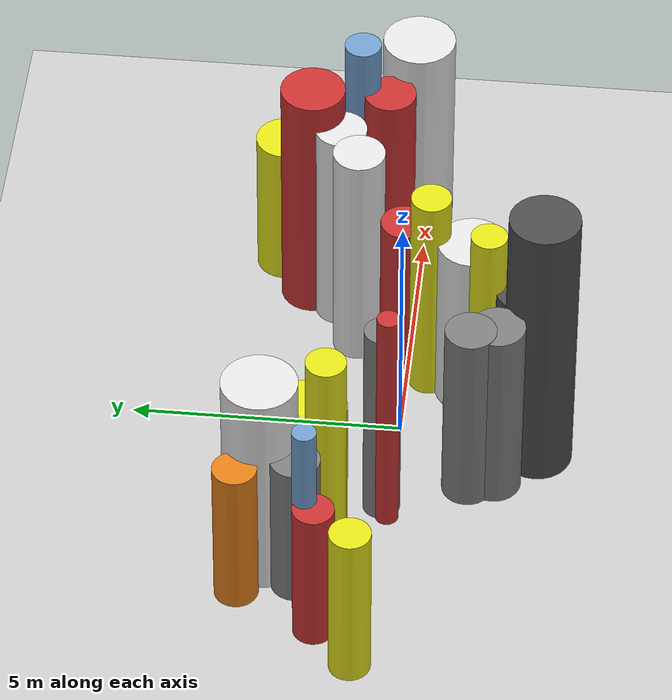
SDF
<?xml version='1.0'?>
<sdf version='1.6'>
  <world name='routeA_rl_v1__dense_recovery__rl_train__s_turn_multi_obstacle__000041'>
    <!-- Sun light -->
    <light name='sun' type='directional'>
      <cast_shadows>1</cast_shadows>
      <pose>0 0 10 0 0 0</pose>
      <diffuse>0.8 0.8 0.8 1</diffuse>
      <specular>0.2 0.2 0.2 1</specular>
      <attenuation>
        <range>1000</range>
        <constant>0.9</constant>
        <linear>0.01</linear>
        <quadratic>0.001</quadratic>
      </attenuation>
      <direction>-0.5 0.1 -0.9</direction>
    </light>

    <!-- Ground plane -->
    <model name='ground_plane'>
      <static>1</static>
      <link name='link'>
        <collision name='collision'>
          <geometry>
            <plane>
              <normal>0 0 1</normal>
              <size>100 100</size>
            </plane>
          </geometry>
          <surface>
            <contact>
              <collide_bitmask>65535</collide_bitmask>
              <ode/>
            </contact>
            <friction>
              <ode>
                <mu>100</mu>
                <mu2>50</mu2>
              </ode>
              <torsional><ode/></torsional>
            </friction>
            <bounce/>
          </surface>
          <max_contacts>10</max_contacts>
        </collision>
        <visual name='visual'>
          <cast_shadows>0</cast_shadows>
          <geometry>
            <plane>
              <normal>0 0 1</normal>
              <size>100 100</size>
            </plane>
          </geometry>
          <material>
            <script>
              <uri>file://media/materials/scripts/gazebo.material</uri>
              <n>Gazebo/Grey</n>
            </script>
          </material>
        </visual>
      </link>
    </model>

    <!-- Environment -->
    <magnetic_field>6e-06 2.3e-05 -4.2e-05</magnetic_field>
    <atmosphere type='adiabatic'/>
    <physics name='default_physics' default='0' type='ode'>
      <gravity>0 0 -9.8</gravity>
      <max_step_size>0.004</max_step_size>
      <real_time_factor>1</real_time_factor>
      <real_time_update_rate>250</real_time_update_rate>
    </physics>
    <scene>
      <ambient>0.4 0.4 0.4 1</ambient>
      <background>0.7 0.7 0.7 1</background>
      <shadows>1</shadows>
    </scene>
    <wind/>
    <spherical_coordinates>
      <surface_model>EARTH_WGS84</surface_model>
      <latitude_deg>0</latitude_deg>
      <longitude_deg>0</longitude_deg>
      <elevation>0</elevation>
      <heading_deg>0</heading_deg>
    </spherical_coordinates>

    <!-- ============ OBSTACLES (28) ============ -->
    <model name='s_turn_obs_0'>
      <static>1</static>
      <link name='link'>
        <visual name='visual'>
          <geometry>
            <cylinder>
              <radius>0.3797</radius>
              <length>3.3732</length>
            </cylinder>
          </geometry>
          <material>
            <script>
              <n>Gazebo/Yellow</n>
              <uri>file://media/materials/scripts/gazebo.material</uri>
            </script>
            <ambient>0.9 0.9 0.1 1</ambient>
          </material>
        </visual>
        <collision name='collision'>
          <geometry>
            <cylinder>
              <radius>0.3797</radius>
              <length>3.3732</length>
            </cylinder>
          </geometry>
          <max_contacts>10</max_contacts>
          <surface>
            <contact><ode/></contact>
            <bounce/>
            <friction>
              <ode><mu>1</mu><mu2>1</mu2></ode>
              <torsional><ode/></torsional>
            </friction>
          </surface>
        </collision>
      </link>
      <pose>-6.0000 0.3633 1.6866 0 0 0.0000</pose>
    </model>

    <model name='s_turn_obs_1'>
      <static>1</static>
      <link name='link'>
        <visual name='visual'>
          <geometry>
            <cylinder>
              <radius>0.3783</radius>
              <length>3.0800</length>
            </cylinder>
          </geometry>
          <material>
            <script>
              <n>Gazebo/Red</n>
              <uri>file://media/materials/scripts/gazebo.material</uri>
            </script>
            <ambient>0.8 0.2 0.2 1</ambient>
          </material>
        </visual>
        <collision name='collision'>
          <geometry>
            <cylinder>
              <radius>0.3783</radius>
              <length>3.0800</length>
            </cylinder>
          </geometry>
          <max_contacts>10</max_contacts>
          <surface>
            <contact><ode/></contact>
            <bounce/>
            <friction>
              <ode><mu>1</mu><mu2>1</mu2></ode>
              <torsional><ode/></torsional>
            </friction>
          </surface>
        </collision>
      </link>
      <pose>-5.2000 1.0885 1.5400 0 0 0.0000</pose>
    </model>

    <model name='s_turn_obs_2'>
      <static>1</static>
      <link name='link'>
        <visual name='visual'>
          <geometry>
            <cylinder>
              <radius>0.4049</radius>
              <length>3.1342</length>
            </cylinder>
          </geometry>
          <material>
            <script>
              <n>Gazebo/Orange</n>
              <uri>file://media/materials/scripts/gazebo.material</uri>
            </script>
            <ambient>0.9 0.5 0.1 1</ambient>
          </material>
        </visual>
        <collision name='collision'>
          <geometry>
            <cylinder>
              <radius>0.4049</radius>
              <length>3.1342</length>
            </cylinder>
          </geometry>
          <max_contacts>10</max_contacts>
          <surface>
            <contact><ode/></contact>
            <bounce/>
            <friction>
              <ode><mu>1</mu><mu2>1</mu2></ode>
              <torsional><ode/></torsional>
            </friction>
          </surface>
        </collision>
      </link>
      <pose>-4.4000 2.5679 1.5671 0 0 0.0000</pose>
    </model>

    <model name='s_turn_obs_3'>
      <static>1</static>
      <link name='link'>
        <visual name='visual'>
          <geometry>
            <cylinder>
              <radius>0.6931</radius>
              <length>4.5150</length>
            </cylinder>
          </geometry>
          <material>
            <script>
              <n>Gazebo/White</n>
              <uri>file://media/materials/scripts/gazebo.material</uri>
            </script>
            <ambient>0.9 0.9 0.9 1</ambient>
          </material>
        </visual>
        <collision name='collision'>
          <geometry>
            <cylinder>
              <radius>0.6931</radius>
              <length>4.5150</length>
            </cylinder>
          </geometry>
          <max_contacts>10</max_contacts>
          <surface>
            <contact><ode/></contact>
            <bounce/>
            <friction>
              <ode><mu>1</mu><mu2>1</mu2></ode>
              <torsional><ode/></torsional>
            </friction>
          </surface>
        </collision>
      </link>
      <pose>-3.6000 2.2031 2.2575 0 0 0.0000</pose>
    </model>

    <model name='s_turn_obs_4'>
      <static>1</static>
      <link name='link'>
        <visual name='visual'>
          <geometry>
            <cylinder>
              <radius>0.6945</radius>
              <length>3.2013</length>
            </cylinder>
          </geometry>
          <material>
            <script>
              <n>Gazebo/Yellow</n>
              <uri>file://media/materials/scripts/gazebo.material</uri>
            </script>
            <ambient>0.9 0.9 0.1 1</ambient>
          </material>
        </visual>
        <collision name='collision'>
          <geometry>
            <cylinder>
              <radius>0.6945</radius>
              <length>3.2013</length>
            </cylinder>
          </geometry>
          <max_contacts>10</max_contacts>
          <surface>
            <contact><ode/></contact>
            <bounce/>
            <friction>
              <ode><mu>1</mu><mu2>1</mu2></ode>
              <torsional><ode/></torsional>
            </friction>
          </surface>
        </collision>
      </link>
      <pose>-2.8000 1.4058 1.6007 0 0 0.0000</pose>
    </model>

    <model name='s_turn_obs_5'>
      <static>1</static>
      <link name='link'>
        <visual name='visual'>
          <geometry>
            <cylinder>
              <radius>0.3413</radius>
              <length>4.4339</length>
            </cylinder>
          </geometry>
          <material>
            <script>
              <n>Gazebo/Grey</n>
              <uri>file://media/materials/scripts/gazebo.material</uri>
            </script>
            <ambient>0.5 0.5 0.5 1</ambient>
          </material>
        </visual>
        <collision name='collision'>
          <geometry>
            <cylinder>
              <radius>0.3413</radius>
              <length>4.4339</length>
            </cylinder>
          </geometry>
          <max_contacts>10</max_contacts>
          <surface>
            <contact><ode/></contact>
            <bounce/>
            <friction>
              <ode><mu>1</mu><mu2>1</mu2></ode>
              <torsional><ode/></torsional>
            </friction>
          </surface>
        </collision>
      </link>
      <pose>-2.0000 0.1681 2.2169 0 0 0.0000</pose>
    </model>

    <model name='s_turn_obs_6'>
      <static>1</static>
      <link name='link'>
        <visual name='visual'>
          <geometry>
            <cylinder>
              <radius>0.5026</radius>
              <length>3.9575</length>
            </cylinder>
          </geometry>
          <material>
            <script>
              <n>Gazebo/Grey</n>
              <uri>file://media/materials/scripts/gazebo.material</uri>
            </script>
            <ambient>0.5 0.5 0.5 1</ambient>
          </material>
        </visual>
        <collision name='collision'>
          <geometry>
            <cylinder>
              <radius>0.5026</radius>
              <length>3.9575</length>
            </cylinder>
          </geometry>
          <max_contacts>10</max_contacts>
          <surface>
            <contact><ode/></contact>
            <bounce/>
            <friction>
              <ode><mu>1</mu><mu2>1</mu2></ode>
              <torsional><ode/></torsional>
            </friction>
          </surface>
        </collision>
      </link>
      <pose>-1.2000 -1.8287 1.9787 0 0 0.0000</pose>
    </model>

    <model name='s_turn_obs_7'>
      <static>1</static>
      <link name='link'>
        <visual name='visual'>
          <geometry>
            <cylinder>
              <radius>0.6502</radius>
              <length>5.8920</length>
            </cylinder>
          </geometry>
          <material>
            <script>
              <n>Gazebo/DarkGrey</n>
              <uri>file://media/materials/scripts/gazebo.material</uri>
            </script>
            <ambient>0.3 0.3 0.3 1</ambient>
          </material>
        </visual>
        <collision name='collision'>
          <geometry>
            <cylinder>
              <radius>0.6502</radius>
              <length>5.8920</length>
            </cylinder>
          </geometry>
          <max_contacts>10</max_contacts>
          <surface>
            <contact><ode/></contact>
            <bounce/>
            <friction>
              <ode><mu>1</mu><mu2>1</mu2></ode>
              <torsional><ode/></torsional>
            </friction>
          </surface>
        </collision>
      </link>
      <pose>-0.4000 -2.5664 2.9460 0 0 0.0000</pose>
    </model>

    <model name='s_turn_obs_8'>
      <static>1</static>
      <link name='link'>
        <visual name='visual'>
          <geometry>
            <cylinder>
              <radius>0.6548</radius>
              <length>3.4392</length>
            </cylinder>
          </geometry>
          <material>
            <script>
              <n>Gazebo/DarkGrey</n>
              <uri>file://media/materials/scripts/gazebo.material</uri>
            </script>
            <ambient>0.3 0.3 0.3 1</ambient>
          </material>
        </visual>
        <collision name='collision'>
          <geometry>
            <cylinder>
              <radius>0.6548</radius>
              <length>3.4392</length>
            </cylinder>
          </geometry>
          <max_contacts>10</max_contacts>
          <surface>
            <contact><ode/></contact>
            <bounce/>
            <friction>
              <ode><mu>1</mu><mu2>1</mu2></ode>
              <torsional><ode/></torsional>
            </friction>
          </surface>
        </collision>
      </link>
      <pose>0.4000 -2.3088 1.7196 0 0 0.0000</pose>
    </model>

    <model name='s_turn_obs_9'>
      <static>1</static>
      <link name='link'>
        <visual name='visual'>
          <geometry>
            <cylinder>
              <radius>0.6447</radius>
              <length>3.7421</length>
            </cylinder>
          </geometry>
          <material>
            <script>
              <n>Gazebo/White</n>
              <uri>file://media/materials/scripts/gazebo.material</uri>
            </script>
            <ambient>0.9 0.9 0.9 1</ambient>
          </material>
        </visual>
        <collision name='collision'>
          <geometry>
            <cylinder>
              <radius>0.6447</radius>
              <length>3.7421</length>
            </cylinder>
          </geometry>
          <max_contacts>10</max_contacts>
          <surface>
            <contact><ode/></contact>
            <bounce/>
            <friction>
              <ode><mu>1</mu><mu2>1</mu2></ode>
              <torsional><ode/></torsional>
            </friction>
          </surface>
        </collision>
      </link>
      <pose>1.2000 -1.1778 1.8711 0 0 0.0000</pose>
    </model>

    <model name='s_turn_obs_10'>
      <static>1</static>
      <link name='link'>
        <visual name='visual'>
          <geometry>
            <cylinder>
              <radius>0.4406</radius>
              <length>3.3836</length>
            </cylinder>
          </geometry>
          <material>
            <script>
              <n>Gazebo/Red</n>
              <uri>file://media/materials/scripts/gazebo.material</uri>
            </script>
            <ambient>0.8 0.2 0.2 1</ambient>
          </material>
        </visual>
        <collision name='collision'>
          <geometry>
            <cylinder>
              <radius>0.4406</radius>
              <length>3.3836</length>
            </cylinder>
          </geometry>
          <max_contacts>10</max_contacts>
          <surface>
            <contact><ode/></contact>
            <bounce/>
            <friction>
              <ode><mu>1</mu><mu2>1</mu2></ode>
              <torsional><ode/></torsional>
            </friction>
          </surface>
        </collision>
      </link>
      <pose>2.0000 0.1342 1.6918 0 0 0.0000</pose>
    </model>

    <model name='s_turn_obs_11'>
      <static>1</static>
      <link name='link'>
        <visual name='visual'>
          <geometry>
            <cylinder>
              <radius>0.4627</radius>
              <length>3.0388</length>
            </cylinder>
          </geometry>
          <material>
            <script>
              <n>Gazebo/Yellow</n>
              <uri>file://media/materials/scripts/gazebo.material</uri>
            </script>
            <ambient>0.9 0.9 0.1 1</ambient>
          </material>
        </visual>
        <collision name='collision'>
          <geometry>
            <cylinder>
              <radius>0.4627</radius>
              <length>3.0388</length>
            </cylinder>
          </geometry>
          <max_contacts>10</max_contacts>
          <surface>
            <contact><ode/></contact>
            <bounce/>
            <friction>
              <ode><mu>1</mu><mu2>1</mu2></ode>
              <torsional><ode/></torsional>
            </friction>
          </surface>
        </collision>
      </link>
      <pose>2.8000 1.0758 1.5194 0 0 0.0000</pose>
    </model>

    <model name='s_turn_obs_12'>
      <static>1</static>
      <link name='link'>
        <visual name='visual'>
          <geometry>
            <cylinder>
              <radius>0.6017</radius>
              <length>5.0754</length>
            </cylinder>
          </geometry>
          <material>
            <script>
              <n>Gazebo/Red</n>
              <uri>file://media/materials/scripts/gazebo.material</uri>
            </script>
            <ambient>0.8 0.2 0.2 1</ambient>
          </material>
        </visual>
        <collision name='collision'>
          <geometry>
            <cylinder>
              <radius>0.6017</radius>
              <length>5.0754</length>
            </cylinder>
          </geometry>
          <max_contacts>10</max_contacts>
          <surface>
            <contact><ode/></contact>
            <bounce/>
            <friction>
              <ode><mu>1</mu><mu2>1</mu2></ode>
              <torsional><ode/></torsional>
            </friction>
          </surface>
        </collision>
      </link>
      <pose>3.6000 1.9916 2.5377 0 0 0.0000</pose>
    </model>

    <model name='s_turn_obs_13'>
      <static>1</static>
      <link name='link'>
        <visual name='visual'>
          <geometry>
            <cylinder>
              <radius>0.5459</radius>
              <length>3.1097</length>
            </cylinder>
          </geometry>
          <material>
            <script>
              <n>Gazebo/Yellow</n>
              <uri>file://media/materials/scripts/gazebo.material</uri>
            </script>
            <ambient>0.9 0.9 0.1 1</ambient>
          </material>
        </visual>
        <collision name='collision'>
          <geometry>
            <cylinder>
              <radius>0.5459</radius>
              <length>3.1097</length>
            </cylinder>
          </geometry>
          <max_contacts>10</max_contacts>
          <surface>
            <contact><ode/></contact>
            <bounce/>
            <friction>
              <ode><mu>1</mu><mu2>1</mu2></ode>
              <torsional><ode/></torsional>
            </friction>
          </surface>
        </collision>
      </link>
      <pose>4.4000 2.6003 1.5549 0 0 0.0000</pose>
    </model>

    <model name='s_turn_obs_14'>
      <static>1</static>
      <link name='link'>
        <visual name='visual'>
          <geometry>
            <cylinder>
              <radius>0.3443</radius>
              <length>4.8476</length>
            </cylinder>
          </geometry>
          <material>
            <script>
              <n>Gazebo/Blue</n>
              <uri>file://media/materials/scripts/gazebo.material</uri>
            </script>
            <ambient>0.447 0.624 0.812 1</ambient>
          </material>
        </visual>
        <collision name='collision'>
          <geometry>
            <cylinder>
              <radius>0.3443</radius>
              <length>4.8476</length>
            </cylinder>
          </geometry>
          <max_contacts>10</max_contacts>
          <surface>
            <contact><ode/></contact>
            <bounce/>
            <friction>
              <ode><mu>1</mu><mu2>1</mu2></ode>
              <torsional><ode/></torsional>
            </friction>
          </surface>
        </collision>
      </link>
      <pose>5.2000 1.2130 2.4238 0 0 0.0000</pose>
    </model>

    <model name='s_turn_obs_15'>
      <static>1</static>
      <link name='link'>
        <visual name='visual'>
          <geometry>
            <cylinder>
              <radius>0.6835</radius>
              <length>4.3684</length>
            </cylinder>
          </geometry>
          <material>
            <script>
              <n>Gazebo/White</n>
              <uri>file://media/materials/scripts/gazebo.material</uri>
            </script>
            <ambient>0.9 0.9 0.9 1</ambient>
          </material>
        </visual>
        <collision name='collision'>
          <geometry>
            <cylinder>
              <radius>0.6835</radius>
              <length>4.3684</length>
            </cylinder>
          </geometry>
          <max_contacts>10</max_contacts>
          <surface>
            <contact><ode/></contact>
            <bounce/>
            <friction>
              <ode><mu>1</mu><mu2>1</mu2></ode>
              <torsional><ode/></torsional>
            </friction>
          </surface>
        </collision>
      </link>
      <pose>6.0000 0.2185 2.1842 0 0 0.0000</pose>
    </model>

    <model name='s_turn_obs2_0'>
      <static>1</static>
      <link name='link'>
        <visual name='visual'>
          <geometry>
            <cylinder>
              <radius>0.2217</radius>
              <length>4.7603</length>
            </cylinder>
          </geometry>
          <material>
            <script>
              <n>Gazebo/Blue</n>
              <uri>file://media/materials/scripts/gazebo.material</uri>
            </script>
            <ambient>0.447 0.624 0.812 1</ambient>
          </material>
        </visual>
        <collision name='collision'>
          <geometry>
            <cylinder>
              <radius>0.2217</radius>
              <length>4.7603</length>
            </cylinder>
          </geometry>
          <max_contacts>10</max_contacts>
          <surface>
            <contact><ode/></contact>
            <bounce/>
            <friction>
              <ode><mu>1</mu><mu2>1</mu2></ode>
              <torsional><ode/></torsional>
            </friction>
          </surface>
        </collision>
      </link>
      <pose>-5.0000 1.2648 2.3801 0 0 0.0000</pose>
    </model>

    <model name='s_turn_obs2_1'>
      <static>1</static>
      <link name='link'>
        <visual name='visual'>
          <geometry>
            <cylinder>
              <radius>0.4572</radius>
              <length>3.1542</length>
            </cylinder>
          </geometry>
          <material>
            <script>
              <n>Gazebo/Grey</n>
              <uri>file://media/materials/scripts/gazebo.material</uri>
            </script>
            <ambient>0.5 0.5 0.5 1</ambient>
          </material>
        </visual>
        <collision name='collision'>
          <geometry>
            <cylinder>
              <radius>0.4572</radius>
              <length>3.1542</length>
            </cylinder>
          </geometry>
          <max_contacts>10</max_contacts>
          <surface>
            <contact><ode/></contact>
            <bounce/>
            <friction>
              <ode><mu>1</mu><mu2>1</mu2></ode>
              <torsional><ode/></torsional>
            </friction>
          </surface>
        </collision>
      </link>
      <pose>-4.0909 1.5250 1.5771 0 0 0.0000</pose>
    </model>

    <model name='s_turn_obs2_2'>
      <static>1</static>
      <link name='link'>
        <visual name='visual'>
          <geometry>
            <cylinder>
              <radius>0.3707</radius>
              <length>4.7061</length>
            </cylinder>
          </geometry>
          <material>
            <script>
              <n>Gazebo/Yellow</n>
              <uri>file://media/materials/scripts/gazebo.material</uri>
            </script>
            <ambient>0.9 0.9 0.1 1</ambient>
          </material>
        </visual>
        <collision name='collision'>
          <geometry>
            <cylinder>
              <radius>0.3707</radius>
              <length>4.7061</length>
            </cylinder>
          </geometry>
          <max_contacts>10</max_contacts>
          <surface>
            <contact><ode/></contact>
            <bounce/>
            <friction>
              <ode><mu>1</mu><mu2>1</mu2></ode>
              <torsional><ode/></torsional>
            </friction>
          </surface>
        </collision>
      </link>
      <pose>-3.1818 1.0684 2.3531 0 0 0.0000</pose>
    </model>

    <model name='s_turn_obs2_3'>
      <static>1</static>
      <link name='link'>
        <visual name='visual'>
          <geometry>
            <cylinder>
              <radius>0.2149</radius>
              <length>4.9975</length>
            </cylinder>
          </geometry>
          <material>
            <script>
              <n>Gazebo/Red</n>
              <uri>file://media/materials/scripts/gazebo.material</uri>
            </script>
            <ambient>0.8 0.2 0.2 1</ambient>
          </material>
        </visual>
        <collision name='collision'>
          <geometry>
            <cylinder>
              <radius>0.2149</radius>
              <length>4.9975</length>
            </cylinder>
          </geometry>
          <max_contacts>10</max_contacts>
          <surface>
            <contact><ode/></contact>
            <bounce/>
            <friction>
              <ode><mu>1</mu><mu2>1</mu2></ode>
              <torsional><ode/></torsional>
            </friction>
          </surface>
        </collision>
      </link>
      <pose>-2.2727 0.0427 2.4987 0 0 0.0000</pose>
    </model>

    <model name='s_turn_obs2_4'>
      <static>1</static>
      <link name='link'>
        <visual name='visual'>
          <geometry>
            <cylinder>
              <radius>0.4731</radius>
              <length>3.9745</length>
            </cylinder>
          </geometry>
          <material>
            <script>
              <n>Gazebo/Grey</n>
              <uri>file://media/materials/scripts/gazebo.material</uri>
            </script>
            <ambient>0.5 0.5 0.5 1</ambient>
          </material>
        </visual>
        <collision name='collision'>
          <geometry>
            <cylinder>
              <radius>0.4731</radius>
              <length>3.9745</length>
            </cylinder>
          </geometry>
          <max_contacts>10</max_contacts>
          <surface>
            <contact><ode/></contact>
            <bounce/>
            <friction>
              <ode><mu>1</mu><mu2>1</mu2></ode>
              <torsional><ode/></torsional>
            </friction>
          </surface>
        </collision>
      </link>
      <pose>-1.3636 -1.3549 1.9872 0 0 0.0000</pose>
    </model>

    <model name='s_turn_obs2_5'>
      <static>1</static>
      <link name='link'>
        <visual name='visual'>
          <geometry>
            <cylinder>
              <radius>0.3125</radius>
              <length>3.0121</length>
            </cylinder>
          </geometry>
          <material>
            <script>
              <n>Gazebo/White</n>
              <uri>file://media/materials/scripts/gazebo.material</uri>
            </script>
            <ambient>0.9 0.9 0.9 1</ambient>
          </material>
        </visual>
        <collision name='collision'>
          <geometry>
            <cylinder>
              <radius>0.3125</radius>
              <length>3.0121</length>
            </cylinder>
          </geometry>
          <max_contacts>10</max_contacts>
          <surface>
            <contact><ode/></contact>
            <bounce/>
            <friction>
              <ode><mu>1</mu><mu2>1</mu2></ode>
              <torsional><ode/></torsional>
            </friction>
          </surface>
        </collision>
      </link>
      <pose>-0.4545 -1.7966 1.5061 0 0 0.0000</pose>
    </model>

    <model name='s_turn_obs2_6'>
      <static>1</static>
      <link name='link'>
        <visual name='visual'>
          <geometry>
            <cylinder>
              <radius>0.3374</radius>
              <length>4.6083</length>
            </cylinder>
          </geometry>
          <material>
            <script>
              <n>Gazebo/Yellow</n>
              <uri>file://media/materials/scripts/gazebo.material</uri>
            </script>
            <ambient>0.9 0.9 0.1 1</ambient>
          </material>
        </visual>
        <collision name='collision'>
          <geometry>
            <cylinder>
              <radius>0.3374</radius>
              <length>4.6083</length>
            </cylinder>
          </geometry>
          <max_contacts>10</max_contacts>
          <surface>
            <contact><ode/></contact>
            <bounce/>
            <friction>
              <ode><mu>1</mu><mu2>1</mu2></ode>
              <torsional><ode/></torsional>
            </friction>
          </surface>
        </collision>
      </link>
      <pose>0.4545 -1.5294 2.3041 0 0 0.0000</pose>
    </model>

    <model name='s_turn_obs2_7'>
      <static>1</static>
      <link name='link'>
        <visual name='visual'>
          <geometry>
            <cylinder>
              <radius>0.3737</radius>
              <length>4.6121</length>
            </cylinder>
          </geometry>
          <material>
            <script>
              <n>Gazebo/Yellow</n>
              <uri>file://media/materials/scripts/gazebo.material</uri>
            </script>
            <ambient>0.9 0.9 0.1 1</ambient>
          </material>
        </visual>
        <collision name='collision'>
          <geometry>
            <cylinder>
              <radius>0.3737</radius>
              <length>4.6121</length>
            </cylinder>
          </geometry>
          <max_contacts>10</max_contacts>
          <surface>
            <contact><ode/></contact>
            <bounce/>
            <friction>
              <ode><mu>1</mu><mu2>1</mu2></ode>
              <torsional><ode/></torsional>
            </friction>
          </surface>
        </collision>
      </link>
      <pose>1.3636 -0.4037 2.3061 0 0 0.0000</pose>
    </model>

    <model name='s_turn_obs2_8'>
      <static>1</static>
      <link name='link'>
        <visual name='visual'>
          <geometry>
            <cylinder>
              <radius>0.4840</radius>
              <length>4.7769</length>
            </cylinder>
          </geometry>
          <material>
            <script>
              <n>Gazebo/White</n>
              <uri>file://media/materials/scripts/gazebo.material</uri>
            </script>
            <ambient>0.9 0.9 0.9 1</ambient>
          </material>
        </visual>
        <collision name='collision'>
          <geometry>
            <cylinder>
              <radius>0.4840</radius>
              <length>4.7769</length>
            </cylinder>
          </geometry>
          <max_contacts>10</max_contacts>
          <surface>
            <contact><ode/></contact>
            <bounce/>
            <friction>
              <ode><mu>1</mu><mu2>1</mu2></ode>
              <torsional><ode/></torsional>
            </friction>
          </surface>
        </collision>
      </link>
      <pose>2.2727 1.0026 2.3885 0 0 0.0000</pose>
    </model>

    <model name='s_turn_obs2_9'>
      <static>1</static>
      <link name='link'>
        <visual name='visual'>
          <geometry>
            <cylinder>
              <radius>0.4847</radius>
              <length>4.5204</length>
            </cylinder>
          </geometry>
          <material>
            <script>
              <n>Gazebo/White</n>
              <uri>file://media/materials/scripts/gazebo.material</uri>
            </script>
            <ambient>0.9 0.9 0.9 1</ambient>
          </material>
        </visual>
        <collision name='collision'>
          <geometry>
            <cylinder>
              <radius>0.4847</radius>
              <length>4.5204</length>
            </cylinder>
          </geometry>
          <max_contacts>10</max_contacts>
          <surface>
            <contact><ode/></contact>
            <bounce/>
            <friction>
              <ode><mu>1</mu><mu2>1</mu2></ode>
              <torsional><ode/></torsional>
            </friction>
          </surface>
        </collision>
      </link>
      <pose>3.1818 1.4240 2.2602 0 0 0.0000</pose>
    </model>

    <model name='s_turn_obs2_10'>
      <static>1</static>
      <link name='link'>
        <visual name='visual'>
          <geometry>
            <cylinder>
              <radius>0.3363</radius>
              <length>3.6734</length>
            </cylinder>
          </geometry>
          <material>
            <script>
              <n>Gazebo/Red</n>
              <uri>file://media/materials/scripts/gazebo.material</uri>
            </script>
            <ambient>0.8 0.2 0.2 1</ambient>
          </material>
        </visual>
        <collision name='collision'>
          <geometry>
            <cylinder>
              <radius>0.3363</radius>
              <length>3.6734</length>
            </cylinder>
          </geometry>
          <max_contacts>10</max_contacts>
          <surface>
            <contact><ode/></contact>
            <bounce/>
            <friction>
              <ode><mu>1</mu><mu2>1</mu2></ode>
              <torsional><ode/></torsional>
            </friction>
          </surface>
        </collision>
      </link>
      <pose>4.0909 1.4735 1.8367 0 0 0.0000</pose>
    </model>

    <model name='s_turn_obs2_11'>
      <static>1</static>
      <link name='link'>
        <visual name='visual'>
          <geometry>
            <cylinder>
              <radius>0.4899</radius>
              <length>3.8609</length>
            </cylinder>
          </geometry>
          <material>
            <script>
              <n>Gazebo/Red</n>
              <uri>file://media/materials/scripts/gazebo.material</uri>
            </script>
            <ambient>0.8 0.2 0.2 1</ambient>
          </material>
        </visual>
        <collision name='collision'>
          <geometry>
            <cylinder>
              <radius>0.4899</radius>
              <length>3.8609</length>
            </cylinder>
          </geometry>
          <max_contacts>10</max_contacts>
          <surface>
            <contact><ode/></contact>
            <bounce/>
            <friction>
              <ode><mu>1</mu><mu2>1</mu2></ode>
              <torsional><ode/></torsional>
            </friction>
          </surface>
        </collision>
      </link>
      <pose>5.0000 0.6776 1.9305 0 0 0.0000</pose>
    </model>

    <!-- GUI camera -->
    <gui fullscreen='0'>
      <camera name='user_camera'>
        <pose>-15 0 18 0 0.85 0.15</pose>
        <view_controller>orbit</view_controller>
        <projection_type>perspective</projection_type>
      </camera>
    </gui>
  </world>
</sdf>
